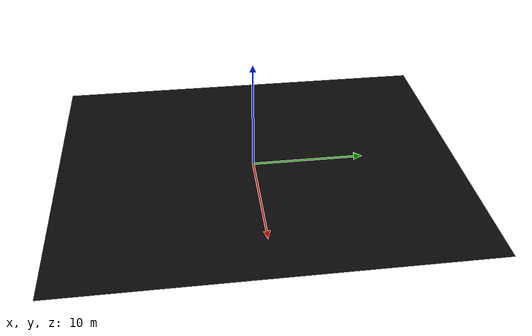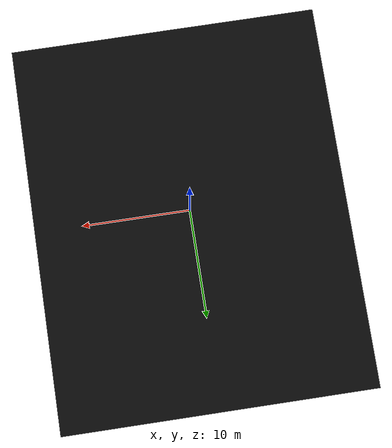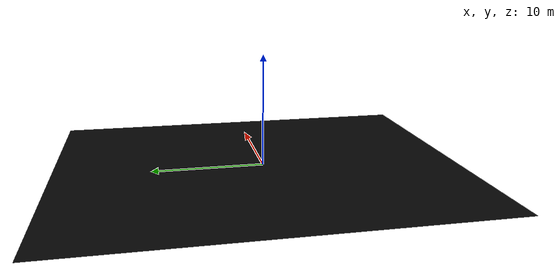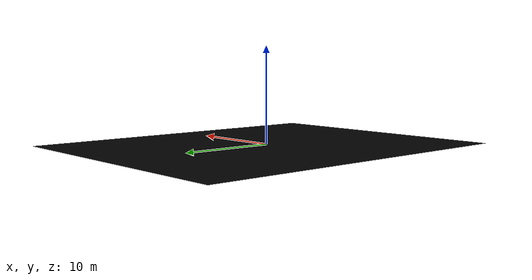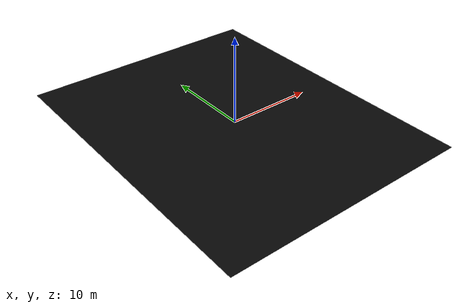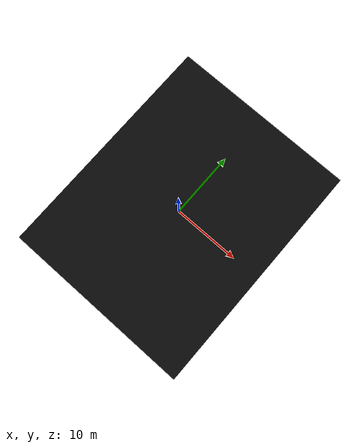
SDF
<sdf version="1.4">
  <!--Generated by blend2model.py-->
  <model name="dark_ground_plane">
    <pose>0.0 0.0 0.0  0.0 0.0 0.0</pose>
    <static>true</static>
    <link name="body">
      <collision name="collision">
        <geometry>
          <mesh>
            <uri>model://dark_ground_plane/meshes/dark_ground_plane.dae</uri>
            <scale>1 1 1</scale>
          </mesh>
        </geometry>
      </collision>
      <visual name="visual">
        <geometry>
          <mesh>
            <uri>model://dark_ground_plane/meshes/dark_ground_plane.dae</uri>
            <scale>1 1 1</scale>
          </mesh>
        </geometry>
      </visual>
    </link>
  </model>
</sdf>
